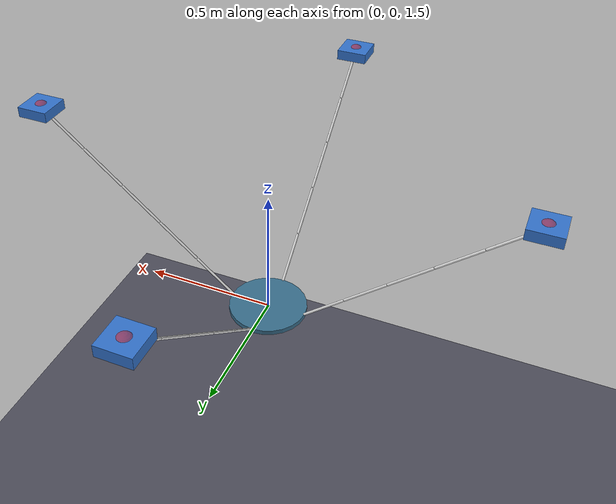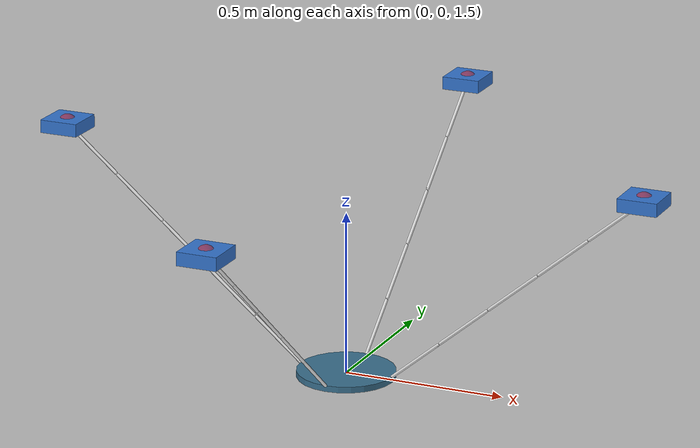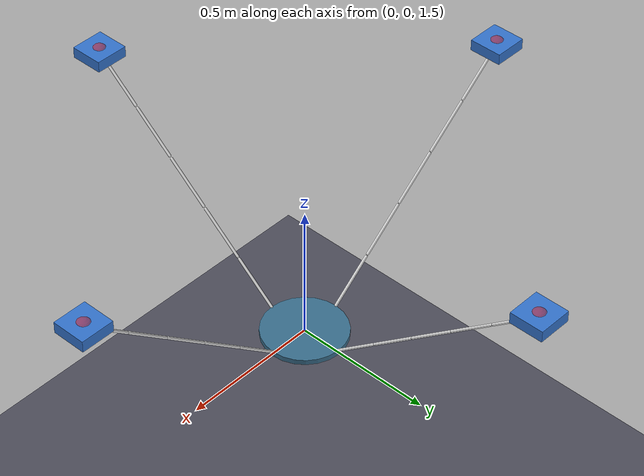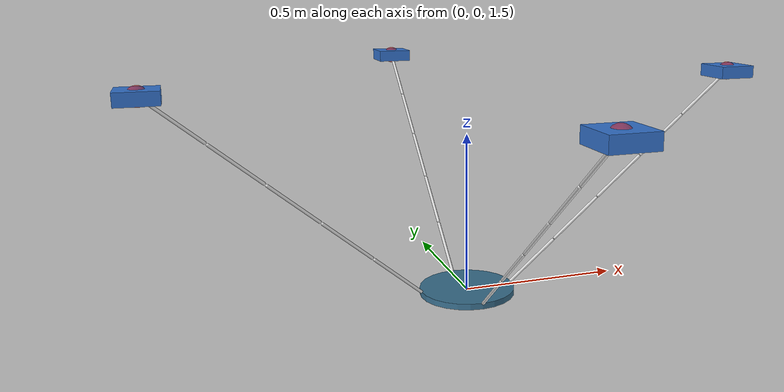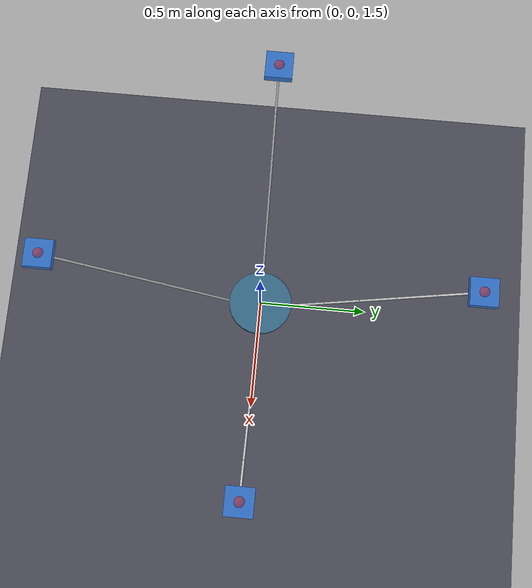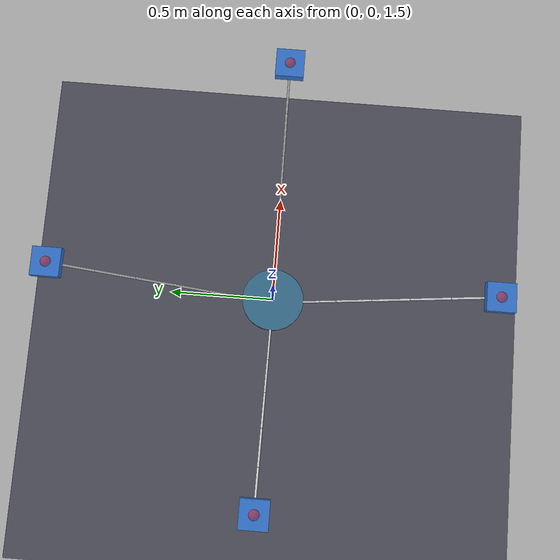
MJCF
<mujoco model="multilift_passive">
  <option timestep="0.002" integrator="implicitfast" cone="elliptic"/>
  <compiler angle="radian" autolimits="true"/>
  <visual>
    <global offwidth="1280" offheight="720"/>
    <map force="0.005"/>
  </visual>
  <worldbody>
    <light pos="0 0 4" dir="0 0 -1" diffuse="0.8 0.8 0.8"/>
    <geom name="floor" type="plane" size="6 6 0.1" rgba="0.3 0.3 0.35 1"/>
    <body name="payload" pos="0 0 1.5">
      <freejoint/>
      <geom type="cylinder" size="0.15 0.009375" rgba="0.22 0.43 0.55 1"/>
      <inertial pos="0 0 0" mass="1" diaginertia="0.0056543 0.0056543 0.01125"/>
      <body name="rope0_link0" pos="0.15 0 0.009375" quat="0.906308 0 0.422618 0"><joint type="ball" damping="0.01" armature="1e-06"/><geom type="capsule" fromto="0 0 0 0 0 0.19" size="0.005" mass="0.008" contype="0" conaffinity="0" rgba="0.85 0.85 0.85 1"/><body name="rope0_link1" pos="0 0 0.2"><joint type="ball" damping="0.01" armature="1e-06"/><geom type="capsule" fromto="0 0 0 0 0 0.19" size="0.005" mass="0.008" contype="0" conaffinity="0" rgba="0.85 0.85 0.85 1"/><body name="rope0_link2" pos="0 0 0.2"><joint type="ball" damping="0.01" armature="1e-06"/><geom type="capsule" fromto="0 0 0 0 0 0.19" size="0.005" mass="0.008" contype="0" conaffinity="0" rgba="0.85 0.85 0.85 1"/><body name="rope0_link3" pos="0 0 0.2"><joint type="ball" damping="0.01" armature="1e-06"/><geom type="capsule" fromto="0 0 0 0 0 0.19" size="0.005" mass="0.008" contype="0" conaffinity="0" rgba="0.85 0.85 0.85 1"/><body name="rope0_link4" pos="0 0 0.2"><joint type="ball" damping="0.01" armature="1e-06"/><geom type="capsule" fromto="0 0 0 0 0 0.19" size="0.005" mass="0.008" contype="0" conaffinity="0" rgba="0.85 0.85 0.85 1"/><body name="rope0_drone" pos="0 0 0.212" quat="0.906308 -0 -0.422618 -0"><joint type="ball" damping="0.01" armature="1e-06"/><geom type="box" size="0.06 0.06 0.02" mass="1.09" rgba="0.2 0.45 0.8 1"/><inertial pos="0 0 0" mass="1.09" diaginertia="0.004421 0.006721 0.010024"/></body></body></body></body></body></body><body name="rope1_link0" pos="9.18485e-18 0.15 0.009375" quat="0.906308 -0.422618 2.58779e-17 0"><joint type="ball" damping="0.01" armature="1e-06"/><geom type="capsule" fromto="0 0 0 0 0 0.19" size="0.005" mass="0.008" contype="0" conaffinity="0" rgba="0.85 0.85 0.85 1"/><body name="rope1_link1" pos="0 0 0.2"><joint type="ball" damping="0.01" armature="1e-06"/><geom type="capsule" fromto="0 0 0 0 0 0.19" size="0.005" mass="0.008" contype="0" conaffinity="0" rgba="0.85 0.85 0.85 1"/><body name="rope1_link2" pos="0 0 0.2"><joint type="ball" damping="0.01" armature="1e-06"/><geom type="capsule" fromto="0 0 0 0 0 0.19" size="0.005" mass="0.008" contype="0" conaffinity="0" rgba="0.85 0.85 0.85 1"/><body name="rope1_link3" pos="0 0 0.2"><joint type="ball" damping="0.01" armature="1e-06"/><geom type="capsule" fromto="0 0 0 0 0 0.19" size="0.005" mass="0.008" contype="0" conaffinity="0" rgba="0.85 0.85 0.85 1"/><body name="rope1_link4" pos="0 0 0.2"><joint type="ball" damping="0.01" armature="1e-06"/><geom type="capsule" fromto="0 0 0 0 0 0.19" size="0.005" mass="0.008" contype="0" conaffinity="0" rgba="0.85 0.85 0.85 1"/><body name="rope1_drone" pos="0 0 0.212" quat="0.906308 0.422618 -2.58779e-17 -0"><joint type="ball" damping="0.01" armature="1e-06"/><geom type="box" size="0.06 0.06 0.02" mass="1.09" rgba="0.2 0.45 0.8 1"/><inertial pos="0 0 0" mass="1.09" diaginertia="0.004421 0.006721 0.010024"/></body></body></body></body></body></body><body name="rope2_link0" pos="-0.15 1.83697e-17 0.009375" quat="0.906308 -5.17558e-17 -0.422618 0"><joint type="ball" damping="0.01" armature="1e-06"/><geom type="capsule" fromto="0 0 0 0 0 0.19" size="0.005" mass="0.008" contype="0" conaffinity="0" rgba="0.85 0.85 0.85 1"/><body name="rope2_link1" pos="0 0 0.2"><joint type="ball" damping="0.01" armature="1e-06"/><geom type="capsule" fromto="0 0 0 0 0 0.19" size="0.005" mass="0.008" contype="0" conaffinity="0" rgba="0.85 0.85 0.85 1"/><body name="rope2_link2" pos="0 0 0.2"><joint type="ball" damping="0.01" armature="1e-06"/><geom type="capsule" fromto="0 0 0 0 0 0.19" size="0.005" mass="0.008" contype="0" conaffinity="0" rgba="0.85 0.85 0.85 1"/><body name="rope2_link3" pos="0 0 0.2"><joint type="ball" damping="0.01" armature="1e-06"/><geom type="capsule" fromto="0 0 0 0 0 0.19" size="0.005" mass="0.008" contype="0" conaffinity="0" rgba="0.85 0.85 0.85 1"/><body name="rope2_link4" pos="0 0 0.2"><joint type="ball" damping="0.01" armature="1e-06"/><geom type="capsule" fromto="0 0 0 0 0 0.19" size="0.005" mass="0.008" contype="0" conaffinity="0" rgba="0.85 0.85 0.85 1"/><body name="rope2_drone" pos="0 0 0.212" quat="0.906308 5.17558e-17 0.422618 -0"><joint type="ball" damping="0.01" armature="1e-06"/><geom type="box" size="0.06 0.06 0.02" mass="1.09" rgba="0.2 0.45 0.8 1"/><inertial pos="0 0 0" mass="1.09" diaginertia="0.004421 0.006721 0.010024"/></body></body></body></body></body></body><body name="rope3_link0" pos="-2.75546e-17 -0.15 0.009375" quat="0.906308 0.422618 -7.76337e-17 0"><joint type="ball" damping="0.01" armature="1e-06"/><geom type="capsule" fromto="0 0 0 0 0 0.19" size="0.005" mass="0.008" contype="0" conaffinity="0" rgba="0.85 0.85 0.85 1"/><body name="rope3_link1" pos="0 0 0.2"><joint type="ball" damping="0.01" armature="1e-06"/><geom type="capsule" fromto="0 0 0 0 0 0.19" size="0.005" mass="0.008" contype="0" conaffinity="0" rgba="0.85 0.85 0.85 1"/><body name="rope3_link2" pos="0 0 0.2"><joint type="ball" damping="0.01" armature="1e-06"/><geom type="capsule" fromto="0 0 0 0 0 0.19" size="0.005" mass="0.008" contype="0" conaffinity="0" rgba="0.85 0.85 0.85 1"/><body name="rope3_link3" pos="0 0 0.2"><joint type="ball" damping="0.01" armature="1e-06"/><geom type="capsule" fromto="0 0 0 0 0 0.19" size="0.005" mass="0.008" contype="0" conaffinity="0" rgba="0.85 0.85 0.85 1"/><body name="rope3_link4" pos="0 0 0.2"><joint type="ball" damping="0.01" armature="1e-06"/><geom type="capsule" fromto="0 0 0 0 0 0.19" size="0.005" mass="0.008" contype="0" conaffinity="0" rgba="0.85 0.85 0.85 1"/><body name="rope3_drone" pos="0 0 0.212" quat="0.906308 -0.422618 7.76337e-17 -0"><joint type="ball" damping="0.01" armature="1e-06"/><geom type="box" size="0.06 0.06 0.02" mass="1.09" rgba="0.2 0.45 0.8 1"/><inertial pos="0 0 0" mass="1.09" diaginertia="0.004421 0.006721 0.010024"/></body></body></body></body></body></body>
    </body>
    <body name="mocap0" mocap="true" pos="0.925237 0 2.15988"><geom type="sphere" size="0.03" contype="0" conaffinity="0" rgba="0.9 0.1 0.1 0.5"/></body><body name="mocap1" mocap="true" pos="5.66544e-17 0.925237 2.15988"><geom type="sphere" size="0.03" contype="0" conaffinity="0" rgba="0.9 0.1 0.1 0.5"/></body><body name="mocap2" mocap="true" pos="-0.925237 1.13309e-16 2.15988"><geom type="sphere" size="0.03" contype="0" conaffinity="0" rgba="0.9 0.1 0.1 0.5"/></body><body name="mocap3" mocap="true" pos="-1.69963e-16 -0.925237 2.15988"><geom type="sphere" size="0.03" contype="0" conaffinity="0" rgba="0.9 0.1 0.1 0.5"/></body>
  </worldbody>
  <equality><weld body1="rope0_drone" body2="mocap0"/><weld body1="rope1_drone" body2="mocap1"/><weld body1="rope2_drone" body2="mocap2"/><weld body1="rope3_drone" body2="mocap3"/></equality>
</mujoco>
